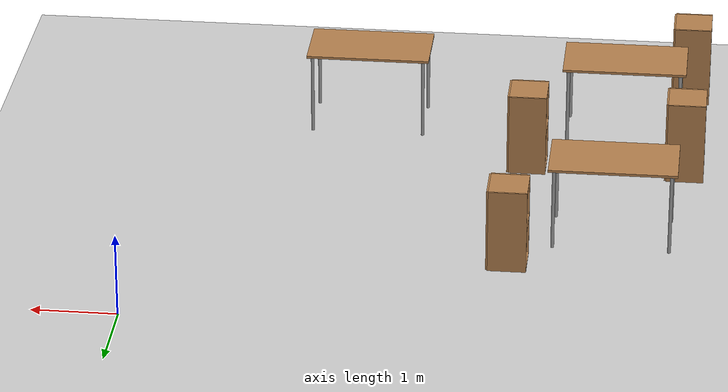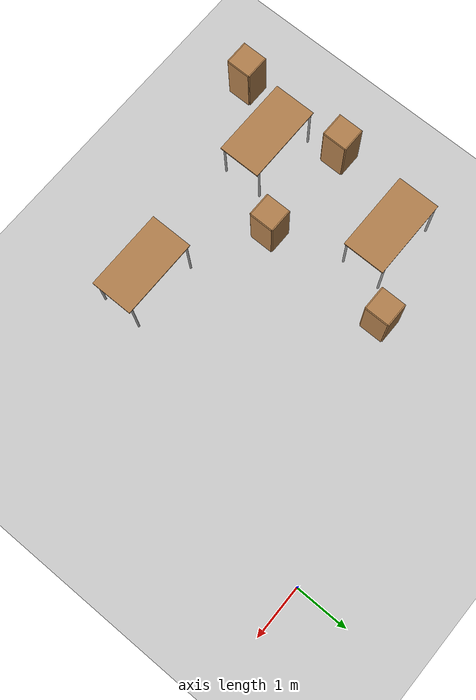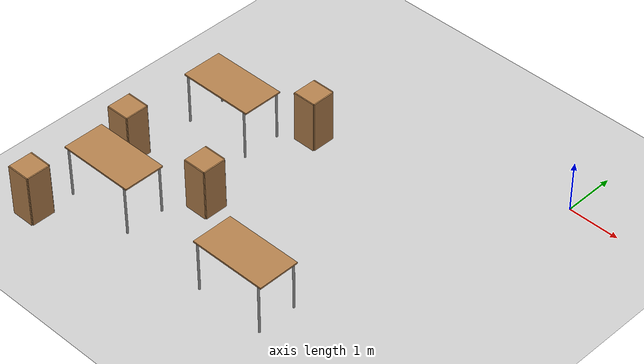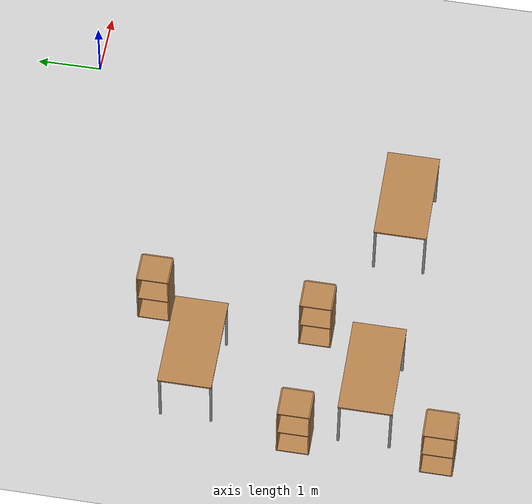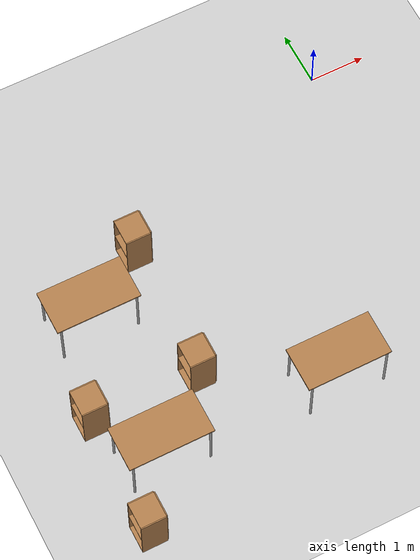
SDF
<sdf version="1.6">
 <world name="default">
  <model name="ground_plane">
   <pose>0 0 0 2.03541 -0 0</pose>
   <static>1</static>
   <link name="link">
    <collision name="collision">
     <geometry><plane><normal>0 0 1</normal><size>100 100</size></plane></geometry>
     <surface>
      <contact><collide_bitmask>65535</collide_bitmask></contact>
      <friction><ode><mu>100</mu><mu2>50</mu2></ode></friction>
     </surface>
    </collision>
    <visual name="visual">
     <cast_shadows>0</cast_shadows>
     <geometry><plane><normal>0 0 1</normal><size>100 100</size></plane></geometry>
     <material>
      <script><uri>file://media/materials/scripts/gazebo.material</uri><name>Gazebo/Grey</name></script>
     </material>
    </visual>
   </link>
  </model>
  <model name="cabinet_0">
   <static>1</static>
   <link name="cabinet_bottom_plate">
    <inertial>
     <pose>0 0 -1 0 -0 0</pose>
     <inertia><ixx>2.05</ixx><ixy>0</ixy><ixz>0</ixz><iyy>2.05</iyy><iyz>0</iyz><izz>2.05</izz></inertia>
     <mass>25</mass>
    </inertial>
    <collision name="cabinet_bottom_plate_geom">
     <pose>0 0 0.01 0 -0 0</pose>
     <geometry><box><size>0.45 0.45 0.02</size></box></geometry>
    </collision>
    <visual name="cabinet_bottom_plate_geom_visual">
     <pose>0 0 0.01 0 -0 0</pose>
     <geometry><box><size>0.45 0.45 0.02</size></box></geometry>
     <material>
      <script><uri>file://media/materials/scripts/gazebo.material</uri><name>Gazebo/Wood</name></script>
     </material>
    </visual>
    <collision name="cabinet_bottom_plate_geom_cabinet_back_plate">
     <pose>0.235 0 0.51 0 -0 0</pose>
     <geometry><box><size>0.02 0.45 1.02</size></box></geometry>
    </collision>
    <visual name="cabinet_bottom_plate_geom_cabinet_back_plate_visual">
     <pose>0.235 0 0.51 0 -0 0</pose>
     <geometry><box><size>0.02 0.45 1.02</size></box></geometry>
     <material>
      <script><uri>file://media/materials/scripts/gazebo.material</uri><name>Gazebo/Wood</name></script>
     </material>
    </visual>
    <collision name="cabinet_bottom_plate_geom_cabinet_left_plate">
     <pose>0 0.235 0.51 0 -0 0</pose>
     <geometry><box><size>0.45 0.02 1.02</size></box></geometry>
    </collision>
    <visual name="cabinet_bottom_plate_geom_cabinet_left_plate_visual">
     <pose>0 0.235 0.51 0 -0 0</pose>
     <geometry><box><size>0.45 0.02 1.02</size></box></geometry>
     <material>
      <script><uri>file://media/materials/scripts/gazebo.material</uri><name>Gazebo/Wood</name></script>
     </material>
    </visual>
    <collision name="cabinet_bottom_plate_geom_cabinet_middle_plate">
     <pose>0 0 0.51 0 -0 0</pose>
     <geometry><box><size>0.45 0.45 0.02</size></box></geometry>
    </collision>
    <visual name="cabinet_bottom_plate_geom_cabinet_middle_plate_visual">
     <pose>0 0 0.51 0 -0 0</pose>
     <geometry><box><size>0.45 0.45 0.02</size></box></geometry>
     <material>
      <script><uri>file://media/materials/scripts/gazebo.material</uri><name>Gazebo/Wood</name></script>
     </material>
    </visual>
    <collision name="cabinet_bottom_plate_geom_cabinet_right_plate">
     <pose>0 -0.235 0.51 0 -0 0</pose>
     <geometry><box><size>0.45 0.02 1.02</size></box></geometry>
    </collision>
    <visual name="cabinet_bottom_plate_geom_cabinet_right_plate_visual">
     <pose>0 -0.235 0.51 0 -0 0</pose>
     <geometry><box><size>0.45 0.02 1.02</size></box></geometry>
     <material>
      <script><uri>file://media/materials/scripts/gazebo.material</uri><name>Gazebo/Wood</name></script>
     </material>
    </visual>
    <collision name="cabinet_bottom_plate_geom_cabinet_top_plate">
     <pose>0 0 1.01 0 -0 0</pose>
     <geometry><box><size>0.45 0.45 0.02</size></box></geometry>
    </collision>
    <visual name="cabinet_bottom_plate_geom_cabinet_top_plate_visual">
     <pose>0 0 1.01 0 -0 0</pose>
     <geometry><box><size>0.45 0.45 0.02</size></box></geometry>
     <material>
      <script><uri>file://media/materials/scripts/gazebo.material</uri><name>Gazebo/Wood</name></script>
     </material>
    </visual>
   </link>
   <pose>-4.29031 -1.68043 0 0 -0 0</pose>
  </model>
  <model name="cabinet_1">
   <static>1</static>
   <link name="cabinet_bottom_plate">
    <inertial>
     <pose>0 0 -1 0 -0 0</pose>
     <inertia><ixx>2.05</ixx><ixy>0</ixy><ixz>0</ixz><iyy>2.05</iyy><iyz>0</iyz><izz>2.05</izz></inertia>
     <mass>25</mass>
    </inertial>
    <collision name="cabinet_bottom_plate_geom">
     <pose>0 0 0.01 0 -0 0</pose>
     <geometry><box><size>0.45 0.45 0.02</size></box></geometry>
    </collision>
    <visual name="cabinet_bottom_plate_geom_visual">
     <pose>0 0 0.01 0 -0 0</pose>
     <geometry><box><size>0.45 0.45 0.02</size></box></geometry>
     <material>
      <script><uri>file://media/materials/scripts/gazebo.material</uri><name>Gazebo/Wood</name></script>
     </material>
    </visual>
    <collision name="cabinet_bottom_plate_geom_cabinet_back_plate">
     <pose>0.235 0 0.51 0 -0 0</pose>
     <geometry><box><size>0.02 0.45 1.02</size></box></geometry>
    </collision>
    <visual name="cabinet_bottom_plate_geom_cabinet_back_plate_visual">
     <pose>0.235 0 0.51 0 -0 0</pose>
     <geometry><box><size>0.02 0.45 1.02</size></box></geometry>
     <material>
      <script><uri>file://media/materials/scripts/gazebo.material</uri><name>Gazebo/Wood</name></script>
     </material>
    </visual>
    <collision name="cabinet_bottom_plate_geom_cabinet_left_plate">
     <pose>0 0.235 0.51 0 -0 0</pose>
     <geometry><box><size>0.45 0.02 1.02</size></box></geometry>
    </collision>
    <visual name="cabinet_bottom_plate_geom_cabinet_left_plate_visual">
     <pose>0 0.235 0.51 0 -0 0</pose>
     <geometry><box><size>0.45 0.02 1.02</size></box></geometry>
     <material>
      <script><uri>file://media/materials/scripts/gazebo.material</uri><name>Gazebo/Wood</name></script>
     </material>
    </visual>
    <collision name="cabinet_bottom_plate_geom_cabinet_middle_plate">
     <pose>0 0 0.51 0 -0 0</pose>
     <geometry><box><size>0.45 0.45 0.02</size></box></geometry>
    </collision>
    <visual name="cabinet_bottom_plate_geom_cabinet_middle_plate_visual">
     <pose>0 0 0.51 0 -0 0</pose>
     <geometry><box><size>0.45 0.45 0.02</size></box></geometry>
     <material>
      <script><uri>file://media/materials/scripts/gazebo.material</uri><name>Gazebo/Wood</name></script>
     </material>
    </visual>
    <collision name="cabinet_bottom_plate_geom_cabinet_right_plate">
     <pose>0 -0.235 0.51 0 -0 0</pose>
     <geometry><box><size>0.45 0.02 1.02</size></box></geometry>
    </collision>
    <visual name="cabinet_bottom_plate_geom_cabinet_right_plate_visual">
     <pose>0 -0.235 0.51 0 -0 0</pose>
     <geometry><box><size>0.45 0.02 1.02</size></box></geometry>
     <material>
      <script><uri>file://media/materials/scripts/gazebo.material</uri><name>Gazebo/Wood</name></script>
     </material>
    </visual>
    <collision name="cabinet_bottom_plate_geom_cabinet_top_plate">
     <pose>0 0 1.01 0 -0 0</pose>
     <geometry><box><size>0.45 0.45 0.02</size></box></geometry>
    </collision>
    <visual name="cabinet_bottom_plate_geom_cabinet_top_plate_visual">
     <pose>0 0 1.01 0 -0 0</pose>
     <geometry><box><size>0.45 0.45 0.02</size></box></geometry>
     <material>
      <script><uri>file://media/materials/scripts/gazebo.material</uri><name>Gazebo/Wood</name></script>
     </material>
    </visual>
   </link>
   <pose>-6.26171 -4.11556 0 0 -0 0</pose>
  </model>
  <model name="cabinet_2">
   <static>1</static>
   <link name="cabinet_bottom_plate">
    <inertial>
     <pose>0 0 -1 0 -0 0</pose>
     <inertia><ixx>2.05</ixx><ixy>0</ixy><ixz>0</ixz><iyy>2.05</iyy><iyz>0</iyz><izz>2.05</izz></inertia>
     <mass>25</mass>
    </inertial>
    <collision name="cabinet_bottom_plate_geom">
     <pose>0 0 0.01 0 -0 0</pose>
     <geometry><box><size>0.45 0.45 0.02</size></box></geometry>
    </collision>
    <visual name="cabinet_bottom_plate_geom_visual">
     <pose>0 0 0.01 0 -0 0</pose>
     <geometry><box><size>0.45 0.45 0.02</size></box></geometry>
     <material>
      <script><uri>file://media/materials/scripts/gazebo.material</uri><name>Gazebo/Wood</name></script>
     </material>
    </visual>
    <collision name="cabinet_bottom_plate_geom_cabinet_back_plate">
     <pose>0.235 0 0.51 0 -0 0</pose>
     <geometry><box><size>0.02 0.45 1.02</size></box></geometry>
    </collision>
    <visual name="cabinet_bottom_plate_geom_cabinet_back_plate_visual">
     <pose>0.235 0 0.51 0 -0 0</pose>
     <geometry><box><size>0.02 0.45 1.02</size></box></geometry>
     <material>
      <script><uri>file://media/materials/scripts/gazebo.material</uri><name>Gazebo/Wood</name></script>
     </material>
    </visual>
    <collision name="cabinet_bottom_plate_geom_cabinet_left_plate">
     <pose>0 0.235 0.51 0 -0 0</pose>
     <geometry><box><size>0.45 0.02 1.02</size></box></geometry>
    </collision>
    <visual name="cabinet_bottom_plate_geom_cabinet_left_plate_visual">
     <pose>0 0.235 0.51 0 -0 0</pose>
     <geometry><box><size>0.45 0.02 1.02</size></box></geometry>
     <material>
      <script><uri>file://media/materials/scripts/gazebo.material</uri><name>Gazebo/Wood</name></script>
     </material>
    </visual>
    <collision name="cabinet_bottom_plate_geom_cabinet_middle_plate">
     <pose>0 0 0.51 0 -0 0</pose>
     <geometry><box><size>0.45 0.45 0.02</size></box></geometry>
    </collision>
    <visual name="cabinet_bottom_plate_geom_cabinet_middle_plate_visual">
     <pose>0 0 0.51 0 -0 0</pose>
     <geometry><box><size>0.45 0.45 0.02</size></box></geometry>
     <material>
      <script><uri>file://media/materials/scripts/gazebo.material</uri><name>Gazebo/Wood</name></script>
     </material>
    </visual>
    <collision name="cabinet_bottom_plate_geom_cabinet_right_plate">
     <pose>0 -0.235 0.51 0 -0 0</pose>
     <geometry><box><size>0.45 0.02 1.02</size></box></geometry>
    </collision>
    <visual name="cabinet_bottom_plate_geom_cabinet_right_plate_visual">
     <pose>0 -0.235 0.51 0 -0 0</pose>
     <geometry><box><size>0.45 0.02 1.02</size></box></geometry>
     <material>
      <script><uri>file://media/materials/scripts/gazebo.material</uri><name>Gazebo/Wood</name></script>
     </material>
    </visual>
    <collision name="cabinet_bottom_plate_geom_cabinet_top_plate">
     <pose>0 0 1.01 0 -0 0</pose>
     <geometry><box><size>0.45 0.45 0.02</size></box></geometry>
    </collision>
    <visual name="cabinet_bottom_plate_geom_cabinet_top_plate_visual">
     <pose>0 0 1.01 0 -0 0</pose>
     <geometry><box><size>0.45 0.45 0.02</size></box></geometry>
     <material>
      <script><uri>file://media/materials/scripts/gazebo.material</uri><name>Gazebo/Wood</name></script>
     </material>
    </visual>
   </link>
   <pose>-4.35545 -4.14683 0 0 -0 0</pose>
  </model>
  <model name="cabinet_3">
   <static>1</static>
   <link name="cabinet_bottom_plate">
    <inertial>
     <pose>0 0 -1 0 -0 0</pose>
     <inertia><ixx>2.05</ixx><ixy>0</ixy><ixz>0</ixz><iyy>2.05</iyy><iyz>0</iyz><izz>2.05</izz></inertia>
     <mass>25</mass>
    </inertial>
    <collision name="cabinet_bottom_plate_geom">
     <pose>0 0 0.01 0 -0 0</pose>
     <geometry><box><size>0.45 0.45 0.02</size></box></geometry>
    </collision>
    <visual name="cabinet_bottom_plate_geom_visual">
     <pose>0 0 0.01 0 -0 0</pose>
     <geometry><box><size>0.45 0.45 0.02</size></box></geometry>
     <material>
      <script><uri>file://media/materials/scripts/gazebo.material</uri><name>Gazebo/Wood</name></script>
     </material>
    </visual>
    <collision name="cabinet_bottom_plate_geom_cabinet_back_plate">
     <pose>0.235 0 0.51 0 -0 0</pose>
     <geometry><box><size>0.02 0.45 1.02</size></box></geometry>
    </collision>
    <visual name="cabinet_bottom_plate_geom_cabinet_back_plate_visual">
     <pose>0.235 0 0.51 0 -0 0</pose>
     <geometry><box><size>0.02 0.45 1.02</size></box></geometry>
     <material>
      <script><uri>file://media/materials/scripts/gazebo.material</uri><name>Gazebo/Wood</name></script>
     </material>
    </visual>
    <collision name="cabinet_bottom_plate_geom_cabinet_left_plate">
     <pose>0 0.235 0.51 0 -0 0</pose>
     <geometry><box><size>0.45 0.02 1.02</size></box></geometry>
    </collision>
    <visual name="cabinet_bottom_plate_geom_cabinet_left_plate_visual">
     <pose>0 0.235 0.51 0 -0 0</pose>
     <geometry><box><size>0.45 0.02 1.02</size></box></geometry>
     <material>
      <script><uri>file://media/materials/scripts/gazebo.material</uri><name>Gazebo/Wood</name></script>
     </material>
    </visual>
    <collision name="cabinet_bottom_plate_geom_cabinet_middle_plate">
     <pose>0 0 0.51 0 -0 0</pose>
     <geometry><box><size>0.45 0.45 0.02</size></box></geometry>
    </collision>
    <visual name="cabinet_bottom_plate_geom_cabinet_middle_plate_visual">
     <pose>0 0 0.51 0 -0 0</pose>
     <geometry><box><size>0.45 0.45 0.02</size></box></geometry>
     <material>
      <script><uri>file://media/materials/scripts/gazebo.material</uri><name>Gazebo/Wood</name></script>
     </material>
    </visual>
    <collision name="cabinet_bottom_plate_geom_cabinet_right_plate">
     <pose>0 -0.235 0.51 0 -0 0</pose>
     <geometry><box><size>0.45 0.02 1.02</size></box></geometry>
    </collision>
    <visual name="cabinet_bottom_plate_geom_cabinet_right_plate_visual">
     <pose>0 -0.235 0.51 0 -0 0</pose>
     <geometry><box><size>0.45 0.02 1.02</size></box></geometry>
     <material>
      <script><uri>file://media/materials/scripts/gazebo.material</uri><name>Gazebo/Wood</name></script>
     </material>
    </visual>
    <collision name="cabinet_bottom_plate_geom_cabinet_top_plate">
     <pose>0 0 1.01 0 -0 0</pose>
     <geometry><box><size>0.45 0.45 0.02</size></box></geometry>
    </collision>
    <visual name="cabinet_bottom_plate_geom_cabinet_top_plate_visual">
     <pose>0 0 1.01 0 -0 0</pose>
     <geometry><box><size>0.45 0.45 0.02</size></box></geometry>
     <material>
      <script><uri>file://media/materials/scripts/gazebo.material</uri><name>Gazebo/Wood</name></script>
     </material>
    </visual>
   </link>
   <pose>-6.27518 -6.24231 0 0 -0 0</pose>
  </model>
  <model name="table">
   <static>1</static>
   <link name="link">
    <collision name="surface">
     <pose>0 0 1 0 -0 0</pose>
     <geometry><box><size>1.5 0.8 0.03</size></box></geometry>
     <surface><friction><ode><mu>0.6</mu><mu2>0.6</mu2></ode></friction></surface>
    </collision>
    <visual name="visual1">
     <pose>0 0 1 0 -0 0</pose>
     <geometry><box><size>1.5 0.8 0.03</size></box></geometry>
     <material>
      <script><uri>file://media/materials/scripts/gazebo.material</uri><name>Gazebo/Wood</name></script>
     </material>
    </visual>
    <collision name="front_left_leg">
     <pose>0.68 0.38 0.5 0 -0 0</pose>
     <geometry><cylinder><radius>0.02</radius><length>1</length></cylinder></geometry>
    </collision>
    <visual name="front_left_leg">
     <pose>0.68 0.38 0.5 0 -0 0</pose>
     <geometry><cylinder><radius>0.02</radius><length>1</length></cylinder></geometry>
     <material>
      <script><uri>file://media/materials/scripts/gazebo.material</uri><name>Gazebo/Grey</name></script>
     </material>
    </visual>
    <collision name="front_right_leg">
     <pose>0.68 -0.38 0.5 0 -0 0</pose>
     <geometry><cylinder><radius>0.02</radius><length>1</length></cylinder></geometry>
    </collision>
    <visual name="front_right_leg">
     <pose>0.68 -0.38 0.5 0 -0 0</pose>
     <geometry><cylinder><radius>0.02</radius><length>1</length></cylinder></geometry>
     <material>
      <script><uri>file://media/materials/scripts/gazebo.material</uri><name>Gazebo/Grey</name></script>
     </material>
    </visual>
    <collision name="back_right_leg">
     <pose>-0.68 -0.38 0.5 0 -0 0</pose>
     <geometry><cylinder><radius>0.02</radius><length>1</length></cylinder></geometry>
    </collision>
    <visual name="back_right_leg">
     <pose>-0.68 -0.38 0.5 0 -0 0</pose>
     <geometry><cylinder><radius>0.02</radius><length>1</length></cylinder></geometry>
     <material>
      <script><uri>file://media/materials/scripts/gazebo.material</uri><name>Gazebo/Grey</name></script>
     </material>
    </visual>
    <collision name="back_left_leg">
     <pose>-0.68 0.38 0.5 0 -0 0</pose>
     <geometry><cylinder><radius>0.02</radius><length>1</length></cylinder></geometry>
    </collision>
    <visual name="back_left_leg">
     <pose>-0.68 0.38 0.5 0 -0 0</pose>
     <geometry><cylinder><radius>0.02</radius><length>1</length></cylinder></geometry>
     <material>
      <script><uri>file://media/materials/scripts/gazebo.material</uri><name>Gazebo/Grey</name></script>
     </material>
    </visual>
   </link>
   <pose>-5.45895 -2.46363 0 0 -0 0</pose>
  </model>
  <model name="table_0">
   <static>1</static>
   <link name="link">
    <collision name="surface">
     <pose>0 0 1 0 -0 0</pose>
     <geometry><box><size>1.5 0.8 0.03</size></box></geometry>
     <surface><friction><ode><mu>0.6</mu><mu2>0.6</mu2></ode></friction></surface>
    </collision>
    <visual name="visual1">
     <pose>0 0 1 0 -0 0</pose>
     <geometry><box><size>1.5 0.8 0.03</size></box></geometry>
     <material>
      <script><uri>file://media/materials/scripts/gazebo.material</uri><name>Gazebo/Wood</name></script>
     </material>
    </visual>
    <collision name="front_left_leg">
     <pose>0.68 0.38 0.5 0 -0 0</pose>
     <geometry><cylinder><radius>0.02</radius><length>1</length></cylinder></geometry>
    </collision>
    <visual name="front_left_leg">
     <pose>0.68 0.38 0.5 0 -0 0</pose>
     <geometry><cylinder><radius>0.02</radius><length>1</length></cylinder></geometry>
     <material>
      <script><uri>file://media/materials/scripts/gazebo.material</uri><name>Gazebo/Grey</name></script>
     </material>
    </visual>
    <collision name="front_right_leg">
     <pose>0.68 -0.38 0.5 0 -0 0</pose>
     <geometry><cylinder><radius>0.02</radius><length>1</length></cylinder></geometry>
    </collision>
    <visual name="front_right_leg">
     <pose>0.68 -0.38 0.5 0 -0 0</pose>
     <geometry><cylinder><radius>0.02</radius><length>1</length></cylinder></geometry>
     <material>
      <script><uri>file://media/materials/scripts/gazebo.material</uri><name>Gazebo/Grey</name></script>
     </material>
    </visual>
    <collision name="back_right_leg">
     <pose>-0.68 -0.38 0.5 0 -0 0</pose>
     <geometry><cylinder><radius>0.02</radius><length>1</length></cylinder></geometry>
    </collision>
    <visual name="back_right_leg">
     <pose>-0.68 -0.38 0.5 0 -0 0</pose>
     <geometry><cylinder><radius>0.02</radius><length>1</length></cylinder></geometry>
     <material>
      <script><uri>file://media/materials/scripts/gazebo.material</uri><name>Gazebo/Grey</name></script>
     </material>
    </visual>
    <collision name="back_left_leg">
     <pose>-0.68 0.38 0.5 0 -0 0</pose>
     <geometry><cylinder><radius>0.02</radius><length>1</length></cylinder></geometry>
    </collision>
    <visual name="back_left_leg">
     <pose>-0.68 0.38 0.5 0 -0 0</pose>
     <geometry><cylinder><radius>0.02</radius><length>1</length></cylinder></geometry>
     <material>
      <script><uri>file://media/materials/scripts/gazebo.material</uri><name>Gazebo/Grey</name></script>
     </material>
    </visual>
   </link>
   <pose>-2.32782 -5.19102 0 0 -0 0</pose>
  </model>
  <model name="table_2">
   <static>1</static>
   <link name="link">
    <collision name="surface">
     <pose>0 0 1 0 -0 0</pose>
     <geometry><box><size>1.5 0.8 0.03</size></box></geometry>
     <surface><friction><ode><mu>0.6</mu><mu2>0.6</mu2></ode></friction></surface>
    </collision>
    <visual name="visual1">
     <pose>0 0 1 0 -0 0</pose>
     <geometry><box><size>1.5 0.8 0.03</size></box></geometry>
     <material>
      <script><uri>file://media/materials/scripts/gazebo.material</uri><name>Gazebo/Wood</name></script>
     </material>
    </visual>
    <collision name="front_left_leg">
     <pose>0.68 0.38 0.5 0 -0 0</pose>
     <geometry><cylinder><radius>0.02</radius><length>1</length></cylinder></geometry>
    </collision>
    <visual name="front_left_leg">
     <pose>0.68 0.38 0.5 0 -0 0</pose>
     <geometry><cylinder><radius>0.02</radius><length>1</length></cylinder></geometry>
     <material>
      <script><uri>file://media/materials/scripts/gazebo.material</uri><name>Gazebo/Grey</name></script>
     </material>
    </visual>
    <collision name="front_right_leg">
     <pose>0.68 -0.38 0.5 0 -0 0</pose>
     <geometry><cylinder><radius>0.02</radius><length>1</length></cylinder></geometry>
    </collision>
    <visual name="front_right_leg">
     <pose>0.68 -0.38 0.5 0 -0 0</pose>
     <geometry><cylinder><radius>0.02</radius><length>1</length></cylinder></geometry>
     <material>
      <script><uri>file://media/materials/scripts/gazebo.material</uri><name>Gazebo/Grey</name></script>
     </material>
    </visual>
    <collision name="back_right_leg">
     <pose>-0.68 -0.38 0.5 0 -0 0</pose>
     <geometry><cylinder><radius>0.02</radius><length>1</length></cylinder></geometry>
    </collision>
    <visual name="back_right_leg">
     <pose>-0.68 -0.38 0.5 0 -0 0</pose>
     <geometry><cylinder><radius>0.02</radius><length>1</length></cylinder></geometry>
     <material>
      <script><uri>file://media/materials/scripts/gazebo.material</uri><name>Gazebo/Grey</name></script>
     </material>
    </visual>
    <collision name="back_left_leg">
     <pose>-0.68 0.38 0.5 0 -0 0</pose>
     <geometry><cylinder><radius>0.02</radius><length>1</length></cylinder></geometry>
    </collision>
    <visual name="back_left_leg">
     <pose>-0.68 0.38 0.5 0 -0 0</pose>
     <geometry><cylinder><radius>0.02</radius><length>1</length></cylinder></geometry>
     <material>
      <script><uri>file://media/materials/scripts/gazebo.material</uri><name>Gazebo/Grey</name></script>
     </material>
    </visual>
   </link>
   <pose>-5.47379 -5.12442 0 0 -0 0</pose>
  </model>
 </world>
</sdf>
